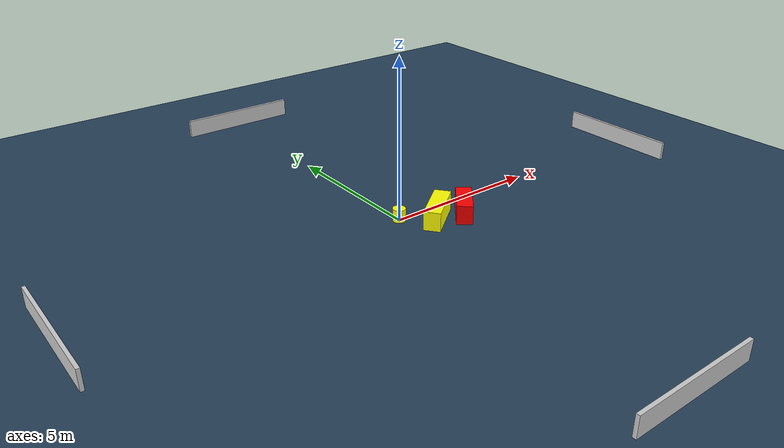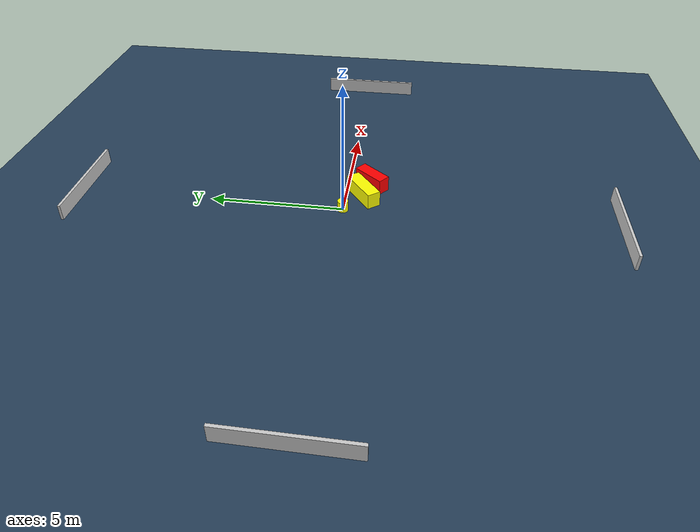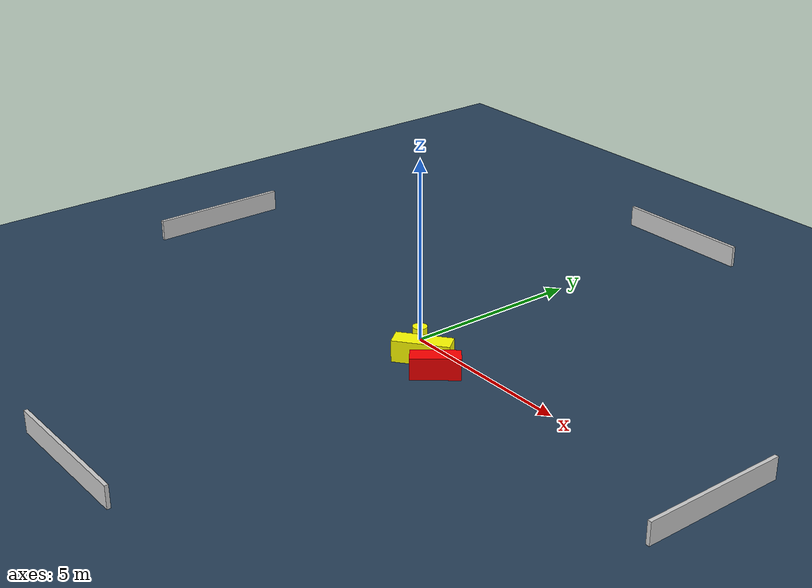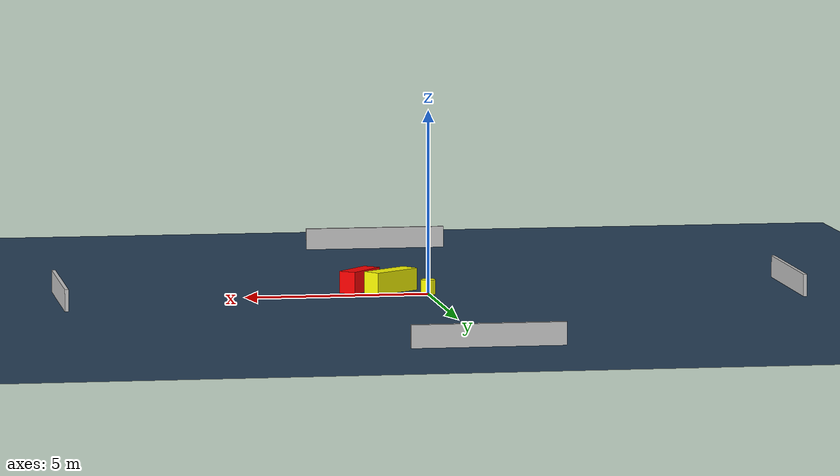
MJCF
<?xml version="1.0" ?>
<mujoco model="generated_environment">
  <option timestep="0.01" integrator="RK4" cone="elliptic"/>
  <default>
    <geom density="1"/>
  </default>
  <asset>
    <texture builtin="gradient" height="3072" name="skybox" rgb1="0.3 0.5 0.7" rgb2="0 0 0" type="skybox" width="512"/>
    <texture builtin="checker" height="300" name="groundplane" rgb1="0.2 0.3 0.4" rgb2="0.1 0.2 0.3" type="2d" width="300"/>
    <material name="groundplane" reflectance="0.2" texrepeat="5 5" texture="groundplane"/>
  </asset>
  <worldbody>
    <light dir="0 0 -1" directional="true" pos="0 0 1.5"/>
    <geom condim="3" friction="0.5 0.005 0.001" material="groundplane" name="floor" pos="0 0 0" size="0 0 0.05" type="plane"/>
    <body name="walls">
      <geom name="wall_1" condim="4" pos="-10.0 0.0 0.3" rgba="0.800000011920929 0.800000011920929 0.800000011920929 1.0" size="0.05 2.0 0.3" type="box"/>
      <geom name="wall_2" condim="4" pos="10.0 0.0 0.3" rgba="0.800000011920929 0.800000011920929 0.800000011920929 1.0" size="0.05 2.0 0.3" type="box"/>
      <geom name="wall_3" condim="4" pos="0.0 -10.0 0.3" rgba="0.800000011920929 0.800000011920929 0.800000011920929 1.0" size="2.0 0.05 0.3" type="box"/>
      <geom name="wall_4" condim="4" pos="0.0 10.0 0.3" rgba="0.800000011920929 0.800000011920929 0.800000011920929 1.0" size="2.0 0.05 0.3" type="box"/>
    </body>
    <body name="robot">
      <joint name="joint_x" type="slide" pos="0 0 0" axis="1 0 0"/>
      <joint name="joint_y" type="slide" pos="0 0 0" axis="0 1 0"/>
      <geom name="robot" type="cylinder" pos="0.0 0.0 0.2" size="0.2 0.2 0.0" mass="5.0" friction="1.0 0.005 0.0001" condim="4" rgba="1.0 1.0 0.0 1.0"/>
    </body>
    <body name="obstacle_1_movable">
      <geom name="obstacle_1_movable" condim="4" pos="0.9296120601460914 -0.648246995969722 0.3" euler="0 0 307.66187758998205" friction="0.0 0.005 0.001" rgba="1.0 1.0 0.0 1.0" size="0.2600118175596571 0.7660663702154757 0.3" type="box" mass="0.1"/>
      <joint type="free"/>
    </body>
    <body name="obstacle_2_static">
      <geom name="obstacle_2_static" condim="4" pos="1.7552903267215358 -0.8996763087949955 0.3" euler="0 0 140.41051150169406" friction="0.0 0.005 0.001" rgba="1.0 0.0 0.0 1.0" size="0.24314593595808148 0.6485290638424669 0.3" type="box"/>
    </body>
  </worldbody>
  <actuator>
    <motor name="actuator_x" joint="joint_x" gear="1" ctrlrange="-1 1"/>
    <motor name="actuator_y" joint="joint_y" gear="1" ctrlrange="-1 1"/>
  </actuator>
</mujoco>
